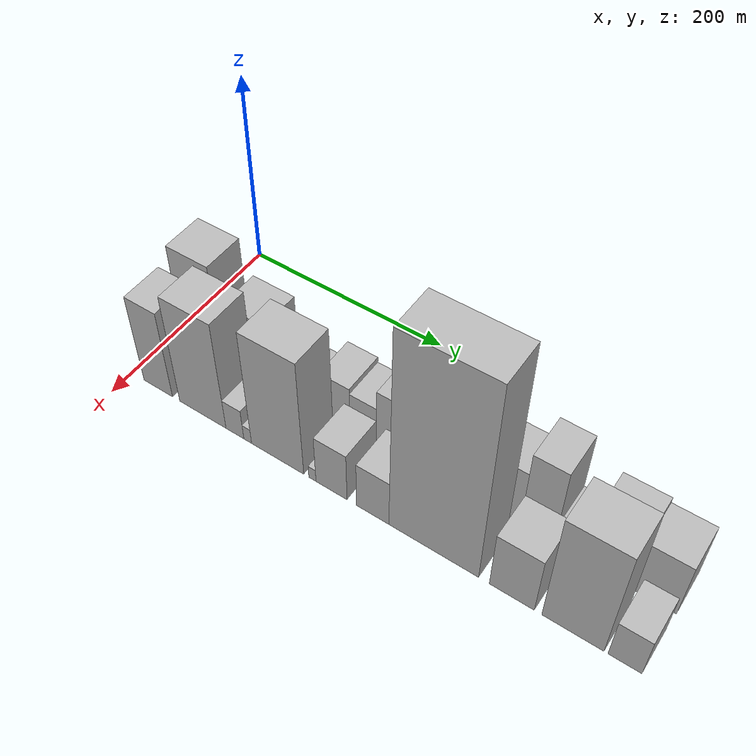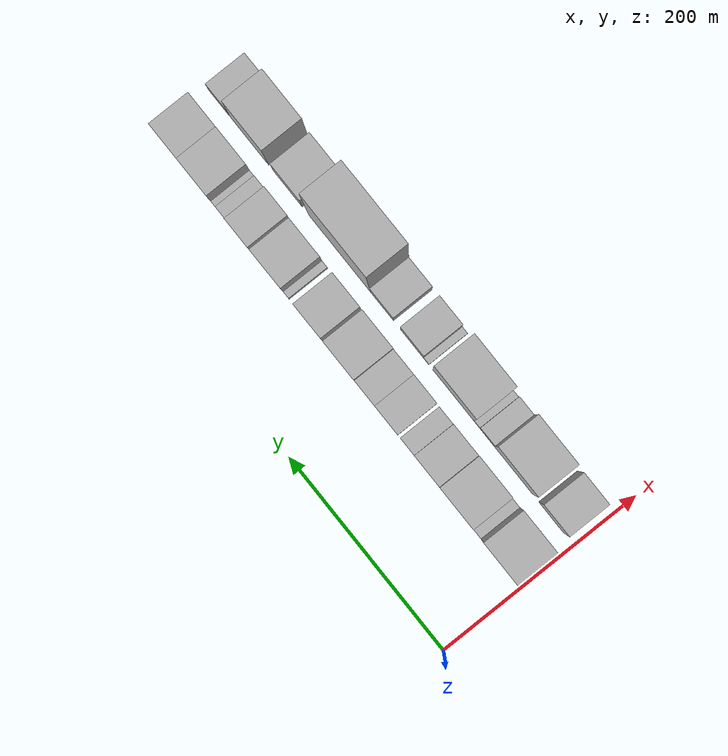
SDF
<sdf version="1.6">
 <world name="default">
  <model name="building_13">
   <static>1</static>
   <pose>100.0000 30.7501 0 0.000000 0.000000 0.000000</pose>
   <link name="link">
    <pose>0 0 55.50 0 0 0</pose>
    <collision name="collision"><geometry><box><size>40.0000 42.9259 111.0000</size></box></geometry></collision>
    <visual name="visual">
     <cast_shadows>0</cast_shadows>
     <geometry><box><size>40.0000 42.9259 111.0000</size></box></geometry>
     <material>
      <script>
       <uri>model://HANNAS_wall/materials/scripts</uri>
       <uri>model://HANNAS_wall/materials/textures</uri>
       <name>vrc/HANNAS_wall</name>
      </script>
     </material>
    </visual>
   </link>
  </model>
  <model name="building_14">
   <static>1</static>
   <pose>100.0000 57.7907 0 0.000000 0.000000 0.000000</pose>
   <link name="link">
    <pose>0 0 12.00 0 0 0</pose>
    <collision name="collision"><geometry><box><size>40.0000 11.1553 24.0000</size></box></geometry></collision>
    <visual name="visual">
     <cast_shadows>0</cast_shadows>
     <geometry><box><size>40.0000 11.1553 24.0000</size></box></geometry>
     <material>
      <script>
       <uri>model://HANNAS_wall/materials/scripts</uri>
       <uri>model://HANNAS_wall/materials/textures</uri>
       <name>vrc/HANNAS_wall</name>
      </script>
     </material>
    </visual>
   </link>
  </model>
  <model name="building_15">
   <static>1</static>
   <pose>100.0000 84.5505 0 0.000000 0.000000 0.000000</pose>
   <link name="link">
    <pose>0 0 37.50 0 0 0</pose>
    <collision name="collision"><geometry><box><size>40.0000 42.3644 75.0000</size></box></geometry></collision>
    <visual name="visual">
     <cast_shadows>0</cast_shadows>
     <geometry><box><size>40.0000 42.3644 75.0000</size></box></geometry>
     <material>
      <script>
       <uri>model://HANNAS_wall/materials/scripts</uri>
       <uri>model://HANNAS_wall/materials/textures</uri>
       <name>vrc/HANNAS_wall</name>
      </script>
     </material>
    </visual>
   </link>
  </model>
  <model name="building_16">
   <static>1</static>
   <pose>100.0000 121.7523 0 0.000000 0.000000 0.000000</pose>
   <link name="link">
    <pose>0 0 27.00 0 0 0</pose>
    <collision name="collision"><geometry><box><size>40.0000 32.0391 54.0000</size></box></geometry></collision>
    <visual name="visual">
     <cast_shadows>0</cast_shadows>
     <geometry><box><size>40.0000 32.0391 54.0000</size></box></geometry>
     <material>
      <script>
       <uri>model://HANNAS_wall/materials/scripts</uri>
       <uri>model://HANNAS_wall/materials/textures</uri>
       <name>vrc/HANNAS_wall</name>
      </script>
     </material>
    </visual>
   </link>
  </model>
  <model name="building_17">
   <static>1</static>
   <pose>100.0000 146.7211 0 0.000000 0.000000 0.000000</pose>
   <link name="link">
    <pose>0 0 16.50 0 0 0</pose>
    <collision name="collision"><geometry><box><size>40.0000 17.8985 33.0000</size></box></geometry></collision>
    <visual name="visual">
     <cast_shadows>0</cast_shadows>
     <geometry><box><size>40.0000 17.8985 33.0000</size></box></geometry>
     <material>
      <script>
       <uri>model://HANNAS_wall/materials/scripts</uri>
       <uri>model://HANNAS_wall/materials/textures</uri>
       <name>vrc/HANNAS_wall</name>
      </script>
     </material>
    </visual>
   </link>
  </model>
  <model name="building_18">
   <static>1</static>
   <pose>100.0000 173.4010 0 0.000000 0.000000 0.000000</pose>
   <link name="link">
    <pose>0 0 27.00 0 0 0</pose>
    <collision name="collision"><geometry><box><size>40.0000 29.4613 54.0000</size></box></geometry></collision>
    <visual name="visual">
     <cast_shadows>0</cast_shadows>
     <geometry><box><size>40.0000 29.4613 54.0000</size></box></geometry>
     <material>
      <script>
       <uri>model://HANNAS_wall/materials/scripts</uri>
       <uri>model://HANNAS_wall/materials/textures</uri>
       <name>vrc/HANNAS_wall</name>
      </script>
     </material>
    </visual>
   </link>
  </model>
  <model name="building_19">
   <static>1</static>
   <pose>100.0000 201.0872 0 0.000000 0.000000 0.000000</pose>
   <link name="link">
    <pose>0 0 24.00 0 0 0</pose>
    <collision name="collision"><geometry><box><size>40.0000 25.9112 48.0000</size></box></geometry></collision>
    <visual name="visual">
     <cast_shadows>0</cast_shadows>
     <geometry><box><size>40.0000 25.9112 48.0000</size></box></geometry>
     <material>
      <script>
       <uri>model://HANNAS_wall/materials/scripts</uri>
       <uri>model://HANNAS_wall/materials/textures</uri>
       <name>vrc/HANNAS_wall</name>
      </script>
     </material>
    </visual>
   </link>
  </model>
  <model name="building_20">
   <static>1</static>
   <pose>100.0000 233.7069 0 0.000000 0.000000 0.000000</pose>
   <link name="link">
    <pose>0 0 34.50 0 0 0</pose>
    <collision name="collision"><geometry><box><size>40.0000 39.3281 69.0000</size></box></geometry></collision>
    <visual name="visual">
     <cast_shadows>0</cast_shadows>
     <geometry><box><size>40.0000 39.3281 69.0000</size></box></geometry>
     <material>
      <script>
       <uri>model://HANNAS_wall/materials/scripts</uri>
       <uri>model://HANNAS_wall/materials/textures</uri>
       <name>vrc/HANNAS_wall</name>
      </script>
     </material>
    </visual>
   </link>
  </model>
  <model name="building_21">
   <static>1</static>
   <pose>100.0000 273.9371 0 0.000000 0.000000 0.000000</pose>
   <link name="link">
    <pose>0 0 30.00 0 0 0</pose>
    <collision name="collision"><geometry><box><size>40.0000 35.1323 60.0000</size></box></geometry></collision>
    <visual name="visual">
     <cast_shadows>0</cast_shadows>
     <geometry><box><size>40.0000 35.1323 60.0000</size></box></geometry>
     <material>
      <script>
       <uri>model://HANNAS_wall/materials/scripts</uri>
       <uri>model://HANNAS_wall/materials/textures</uri>
       <name>vrc/HANNAS_wall</name>
      </script>
     </material>
    </visual>
   </link>
  </model>
  <model name="building_22">
   <static>1</static>
   <pose>100.0000 303.0156 0 0.000000 0.000000 0.000000</pose>
   <link name="link">
    <pose>0 0 7.50 0 0 0</pose>
    <collision name="collision"><geometry><box><size>40.0000 7.0247 15.0000</size></box></geometry></collision>
    <visual name="visual">
     <cast_shadows>0</cast_shadows>
     <geometry><box><size>40.0000 7.0247 15.0000</size></box></geometry>
     <material>
      <script>
       <uri>model://HANNAS_wall/materials/scripts</uri>
       <uri>model://HANNAS_wall/materials/textures</uri>
       <name>vrc/HANNAS_wall</name>
      </script>
     </material>
    </visual>
   </link>
  </model>
  <model name="building_23">
   <static>1</static>
   <pose>100.0000 326.2708 0 0.000000 0.000000 0.000000</pose>
   <link name="link">
    <pose>0 0 34.50 0 0 0</pose>
    <collision name="collision"><geometry><box><size>40.0000 39.4858 69.0000</size></box></geometry></collision>
    <visual name="visual">
     <cast_shadows>0</cast_shadows>
     <geometry><box><size>40.0000 39.4858 69.0000</size></box></geometry>
     <material>
      <script>
       <uri>model://HANNAS_wall/materials/scripts</uri>
       <uri>model://HANNAS_wall/materials/textures</uri>
       <name>vrc/HANNAS_wall</name>
      </script>
     </material>
    </visual>
   </link>
  </model>
  <model name="building_24">
   <static>1</static>
   <pose>100.0000 360.6409 0 0.000000 0.000000 0.000000</pose>
   <link name="link">
    <pose>0 0 46.50 0 0 0</pose>
    <collision name="collision"><geometry><box><size>40.0000 29.2542 93.0000</size></box></geometry></collision>
    <visual name="visual">
     <cast_shadows>0</cast_shadows>
     <geometry><box><size>40.0000 29.2542 93.0000</size></box></geometry>
     <material>
      <script>
       <uri>model://HANNAS_wall/materials/scripts</uri>
       <uri>model://HANNAS_wall/materials/textures</uri>
       <name>vrc/HANNAS_wall</name>
      </script>
     </material>
    </visual>
   </link>
  </model>
  <model name="building_25">
   <static>1</static>
   <pose>100.0000 384.1353 0 0.000000 0.000000 0.000000</pose>
   <link name="link">
    <pose>0 0 15.00 0 0 0</pose>
    <collision name="collision"><geometry><box><size>40.0000 17.7346 30.0000</size></box></geometry></collision>
    <visual name="visual">
     <cast_shadows>0</cast_shadows>
     <geometry><box><size>40.0000 17.7346 30.0000</size></box></geometry>
     <material>
      <script>
       <uri>model://HANNAS_wall/materials/scripts</uri>
       <uri>model://HANNAS_wall/materials/textures</uri>
       <name>vrc/HANNAS_wall</name>
      </script>
     </material>
    </visual>
   </link>
  </model>
  <model name="building_26">
   <static>1</static>
   <pose>100.0000 396.5348 0 0.000000 0.000000 0.000000</pose>
   <link name="link">
    <pose>0 0 7.50 0 0 0</pose>
    <collision name="collision"><geometry><box><size>40.0000 7.0643 15.0000</size></box></geometry></collision>
    <visual name="visual">
     <cast_shadows>0</cast_shadows>
     <geometry><box><size>40.0000 7.0643 15.0000</size></box></geometry>
     <material>
      <script>
       <uri>model://HANNAS_wall/materials/scripts</uri>
       <uri>model://HANNAS_wall/materials/textures</uri>
       <name>vrc/HANNAS_wall</name>
      </script>
     </material>
    </visual>
   </link>
  </model>
  <model name="building_27">
   <static>1</static>
   <pose>100.0000 419.1599 0 0.000000 0.000000 0.000000</pose>
   <link name="link">
    <pose>0 0 34.50 0 0 0</pose>
    <collision name="collision"><geometry><box><size>40.0000 38.1860 69.0000</size></box></geometry></collision>
    <visual name="visual">
     <cast_shadows>0</cast_shadows>
     <geometry><box><size>40.0000 38.1860 69.0000</size></box></geometry>
     <material>
      <script>
       <uri>model://HANNAS_wall/materials/scripts</uri>
       <uri>model://HANNAS_wall/materials/textures</uri>
       <name>vrc/HANNAS_wall</name>
      </script>
     </material>
    </visual>
   </link>
  </model>
  <model name="building_28">
   <static>1</static>
   <pose>100.0000 456.1547 0 0.000000 0.000000 0.000000</pose>
   <link name="link">
    <pose>0 0 31.50 0 0 0</pose>
    <collision name="collision"><geometry><box><size>40.0000 35.8036 63.0000</size></box></geometry></collision>
    <visual name="visual">
     <cast_shadows>0</cast_shadows>
     <geometry><box><size>40.0000 35.8036 63.0000</size></box></geometry>
     <material>
      <script>
       <uri>model://HANNAS_wall/materials/scripts</uri>
       <uri>model://HANNAS_wall/materials/textures</uri>
       <name>vrc/HANNAS_wall</name>
      </script>
     </material>
    </visual>
   </link>
  </model>
  <model name="building_42">
   <static>1</static>
   <pose>155.0000 29.4156 0 0.000000 0.000000 0.000000</pose>
   <link name="link">
    <pose>0 0 51.00 0 0 0</pose>
    <collision name="collision"><geometry><box><size>40.0000 31.9546 102.0000</size></box></geometry></collision>
    <visual name="visual">
     <cast_shadows>0</cast_shadows>
     <geometry><box><size>40.0000 31.9546 102.0000</size></box></geometry>
     <material>
      <script>
       <uri>model://HANNAS_wall/materials/scripts</uri>
       <uri>model://HANNAS_wall/materials/textures</uri>
       <name>vrc/HANNAS_wall</name>
      </script>
     </material>
    </visual>
   </link>
  </model>
  <model name="building_43">
   <static>1</static>
   <pose>155.0000 78.2819 0 0.000000 0.000000 0.000000</pose>
   <link name="link">
    <pose>0 0 63.00 0 0 0</pose>
    <collision name="collision"><geometry><box><size>40.0000 49.7780 126.0000</size></box></geometry></collision>
    <visual name="visual">
     <cast_shadows>0</cast_shadows>
     <geometry><box><size>40.0000 49.7780 126.0000</size></box></geometry>
     <material>
      <script>
       <uri>model://HANNAS_wall/materials/scripts</uri>
       <uri>model://HANNAS_wall/materials/textures</uri>
       <name>vrc/HANNAS_wall</name>
      </script>
     </material>
    </visual>
   </link>
  </model>
  <model name="building_44">
   <static>1</static>
   <pose>155.0000 112.5062 0 0.000000 0.000000 0.000000</pose>
   <link name="link">
    <pose>0 0 18.00 0 0 0</pose>
    <collision name="collision"><geometry><box><size>40.0000 18.6706 36.0000</size></box></geometry></collision>
    <visual name="visual">
     <cast_shadows>0</cast_shadows>
     <geometry><box><size>40.0000 18.6706 36.0000</size></box></geometry>
     <material>
      <script>
       <uri>model://HANNAS_wall/materials/scripts</uri>
       <uri>model://HANNAS_wall/materials/textures</uri>
       <name>vrc/HANNAS_wall</name>
      </script>
     </material>
    </visual>
   </link>
  </model>
  <model name="building_45">
   <static>1</static>
   <pose>155.0000 125.8176 0 0.000000 0.000000 0.000000</pose>
   <link name="link">
    <pose>0 0 9.00 0 0 0</pose>
    <collision name="collision"><geometry><box><size>40.0000 7.9524 18.0000</size></box></geometry></collision>
    <visual name="visual">
     <cast_shadows>0</cast_shadows>
     <geometry><box><size>40.0000 7.9524 18.0000</size></box></geometry>
     <material>
      <script>
       <uri>model://HANNAS_wall/materials/scripts</uri>
       <uri>model://HANNAS_wall/materials/textures</uri>
       <name>vrc/HANNAS_wall</name>
      </script>
     </material>
    </visual>
   </link>
  </model>
  <model name="building_46">
   <static>1</static>
   <pose>155.0000 156.0672 0 0.000000 0.000000 0.000000</pose>
   <link name="link">
    <pose>0 0 67.50 0 0 0</pose>
    <collision name="collision"><geometry><box><size>40.0000 52.5467 135.0000</size></box></geometry></collision>
    <visual name="visual">
     <cast_shadows>0</cast_shadows>
     <geometry><box><size>40.0000 52.5467 135.0000</size></box></geometry>
     <material>
      <script>
       <uri>model://HANNAS_wall/materials/scripts</uri>
       <uri>model://HANNAS_wall/materials/textures</uri>
       <name>vrc/HANNAS_wall</name>
      </script>
     </material>
    </visual>
   </link>
  </model>
  <model name="building_47">
   <static>1</static>
   <pose>155.0000 190.8280 0 0.000000 0.000000 0.000000</pose>
   <link name="link">
    <pose>0 0 7.50 0 0 0</pose>
    <collision name="collision"><geometry><box><size>40.0000 6.9749 15.0000</size></box></geometry></collision>
    <visual name="visual">
     <cast_shadows>0</cast_shadows>
     <geometry><box><size>40.0000 6.9749 15.0000</size></box></geometry>
     <material>
      <script>
       <uri>model://HANNAS_wall/materials/scripts</uri>
       <uri>model://HANNAS_wall/materials/textures</uri>
       <name>vrc/HANNAS_wall</name>
      </script>
     </material>
    </visual>
   </link>
  </model>
  <model name="building_48">
   <static>1</static>
   <pose>155.0000 209.2315 0 0.000000 0.000000 0.000000</pose>
   <link name="link">
    <pose>0 0 28.50 0 0 0</pose>
    <collision name="collision"><geometry><box><size>40.0000 29.8321 57.0000</size></box></geometry></collision>
    <visual name="visual">
     <cast_shadows>0</cast_shadows>
     <geometry><box><size>40.0000 29.8321 57.0000</size></box></geometry>
     <material>
      <script>
       <uri>model://HANNAS_wall/materials/scripts</uri>
       <uri>model://HANNAS_wall/materials/textures</uri>
       <name>vrc/HANNAS_wall</name>
      </script>
     </material>
    </visual>
   </link>
  </model>
  <model name="building_49">
   <static>1</static>
   <pose>155.0000 248.1320 0 0.000000 0.000000 0.000000</pose>
   <link name="link">
    <pose>0 0 27.00 0 0 0</pose>
    <collision name="collision"><geometry><box><size>40.0000 29.9689 54.0000</size></box></geometry></collision>
    <visual name="visual">
     <cast_shadows>0</cast_shadows>
     <geometry><box><size>40.0000 29.9689 54.0000</size></box></geometry>
     <material>
      <script>
       <uri>model://HANNAS_wall/materials/scripts</uri>
       <uri>model://HANNAS_wall/materials/textures</uri>
       <name>vrc/HANNAS_wall</name>
      </script>
     </material>
    </visual>
   </link>
  </model>
  <model name="building_50">
   <static>1</static>
   <pose>155.0000 302.7714 0 0.000000 0.000000 0.000000</pose>
   <link name="link">
    <pose>0 0 112.50 0 0 0</pose>
    <collision name="collision"><geometry><box><size>40.0000 79.3099 225.0000</size></box></geometry></collision>
    <visual name="visual">
     <cast_shadows>0</cast_shadows>
     <geometry><box><size>40.0000 79.3099 225.0000</size></box></geometry>
     <material>
      <script>
       <uri>model://HANNAS_wall/materials/scripts</uri>
       <uri>model://HANNAS_wall/materials/textures</uri>
       <name>vrc/HANNAS_wall</name>
      </script>
     </material>
    </visual>
   </link>
  </model>
  <model name="building_51">
   <static>1</static>
   <pose>155.0000 370.1053 0 0.000000 0.000000 0.000000</pose>
   <link name="link">
    <pose>0 0 33.00 0 0 0</pose>
    <collision name="collision"><geometry><box><size>40.0000 37.3581 66.0000</size></box></geometry></collision>
    <visual name="visual">
     <cast_shadows>0</cast_shadows>
     <geometry><box><size>40.0000 37.3581 66.0000</size></box></geometry>
     <material>
      <script>
       <uri>model://HANNAS_wall/materials/scripts</uri>
       <uri>model://HANNAS_wall/materials/textures</uri>
       <name>vrc/HANNAS_wall</name>
      </script>
     </material>
    </visual>
   </link>
  </model>
  <model name="building_52">
   <static>1</static>
   <pose>155.0000 419.4232 0 0.000000 0.000000 0.000000</pose>
   <link name="link">
    <pose>0 0 63.00 0 0 0</pose>
    <collision name="collision"><geometry><box><size>40.0000 49.2776 126.0000</size></box></geometry></collision>
    <visual name="visual">
     <cast_shadows>0</cast_shadows>
     <geometry><box><size>40.0000 49.2776 126.0000</size></box></geometry>
     <material>
      <script>
       <uri>model://HANNAS_wall/materials/scripts</uri>
       <uri>model://HANNAS_wall/materials/textures</uri>
       <name>vrc/HANNAS_wall</name>
      </script>
     </material>
    </visual>
   </link>
  </model>
  <model name="building_53">
   <static>1</static>
   <pose>155.0000 460.0002 0 0.000000 0.000000 0.000000</pose>
   <link name="link">
    <pose>0 0 22.50 0 0 0</pose>
    <collision name="collision"><geometry><box><size>40.0000 25.8765 45.0000</size></box></geometry></collision>
    <visual name="visual">
     <cast_shadows>0</cast_shadows>
     <geometry><box><size>40.0000 25.8765 45.0000</size></box></geometry>
     <material>
      <script>
       <uri>model://HANNAS_wall/materials/scripts</uri>
       <uri>model://HANNAS_wall/materials/textures</uri>
       <name>vrc/HANNAS_wall</name>
      </script>
     </material>
    </visual>
   </link>
  </model>
 </world>
</sdf>
